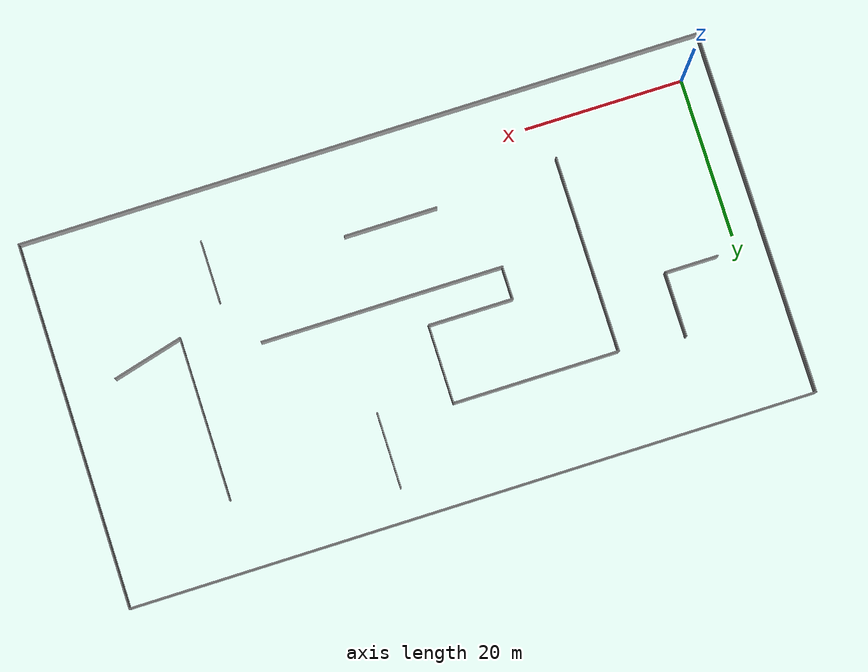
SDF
<?xml version='1.0'?>
<sdf version='1.7'>
  <model name='maze1.world'>
    <pose>39.64 18.255 0 0 -0 0</pose>
    <link name='Wall_0'>
      <collision name='Wall_0_Collision'>
        <geometry>
          <box>
            <size>45.75 0.15 2.5</size>
          </box>
        </geometry>
        <pose>0 0 1.25 0 -0 0</pose>
      </collision>
      <visual name='Wall_0_Visual'>
        <pose>0 0 1.25 0 -0 0</pose>
        <geometry>
          <box>
            <size>45.75 0.15 2.5</size>
          </box>
        </geometry>
        <material>
          <script>
            <uri>file://media/materials/scripts/gazebo.material</uri>
            <name>Gazebo/Grey</name>
          </script>
          <ambient>1 1 1 1</ambient>
        </material>
        <meta>
          <layer>0</layer>
        </meta>
      </visual>
      <pose>-43.05 0.125 0 0 -0 1.5708</pose>
    </link>
    <link name='Wall_1'>
      <collision name='Wall_1_Collision'>
        <geometry>
          <box>
            <size>86.25 0.15 2.5</size>
          </box>
        </geometry>
        <pose>0 0 1.25 0 -0 0</pose>
      </collision>
      <visual name='Wall_1_Visual'>
        <pose>0 0 1.25 0 -0 0</pose>
        <geometry>
          <box>
            <size>86.25 0.15 2.5</size>
          </box>
        </geometry>
        <material>
          <script>
            <uri>file://media/materials/scripts/gazebo.material</uri>
            <name>Gazebo/Grey</name>
          </script>
          <ambient>1 1 1 1</ambient>
        </material>
        <meta>
          <layer>0</layer>
        </meta>
      </visual>
      <pose>-3e-06 22.925 0 0 -0 0</pose>
    </link>
    <link name='Wall_10'>
      <collision name='Wall_10_Collision'>
        <geometry>
          <box>
            <size>30.5 0.15 2.5</size>
          </box>
        </geometry>
        <pose>0 0 1.25 0 -0 0</pose>
      </collision>
      <visual name='Wall_10_Visual'>
        <pose>0 0 1.25 0 -0 0</pose>
        <geometry>
          <box>
            <size>30.5 0.15 2.5</size>
          </box>
        </geometry>
        <material>
          <script>
            <uri>file://media/materials/scripts/gazebo.material</uri>
            <name>Gazebo/Grey</name>
          </script>
          <ambient>1 1 1 1</ambient>
        </material>
        <meta>
          <layer>0</layer>
        </meta>
      </visual>
      <pose>3.42051 -2.84481 0 0 -0 0</pose>
    </link>
    <link name='Wall_12'>
      <collision name='Wall_12_Collision'>
        <geometry>
          <box>
            <size>20.5 0.15 2.5</size>
          </box>
        </geometry>
        <pose>0 0 1.25 0 -0 0</pose>
      </collision>
      <visual name='Wall_12_Visual'>
        <pose>0 0 1.25 0 -0 0</pose>
        <geometry>
          <box>
            <size>20.5 0.15 2.5</size>
          </box>
        </geometry>
        <material>
          <script>
            <uri>file://media/materials/scripts/gazebo.material</uri>
            <name>Gazebo/Grey</name>
          </script>
          <ambient>1 1 1 1</ambient>
        </material>
        <meta>
          <layer>0</layer>
        </meta>
      </visual>
      <pose>27.8289 3.92957 0 0 -0 -1.5708</pose>
    </link>
    <link name='Wall_13'>
      <collision name='Wall_13_Collision'>
        <geometry>
          <box>
            <size>9.25 0.15 2.5</size>
          </box>
        </geometry>
        <pose>0 0 1.25 0 -0 0</pose>
      </collision>
      <visual name='Wall_13_Visual'>
        <pose>0 0 1.25 0 -0 0</pose>
        <geometry>
          <box>
            <size>9.25 0.15 2.5</size>
          </box>
        </geometry>
        <material>
          <script>
            <uri>file://media/materials/scripts/gazebo.material</uri>
            <name>Gazebo/Grey</name>
          </script>
          <ambient>1 1 1 1</ambient>
        </material>
        <meta>
          <layer>0</layer>
        </meta>
      </visual>
      <pose>32.2239 -5.0678 0 0 -0 0.261799</pose>
    </link>
    <link name='Wall_2'>
      <collision name='Wall_2_Collision'>
        <geometry>
          <box>
            <size>46 0.15 2.5</size>
          </box>
        </geometry>
        <pose>0 0 1.25 0 -0 0</pose>
      </collision>
      <visual name='Wall_2_Visual'>
        <pose>0 0 1.25 0 -0 0</pose>
        <geometry>
          <box>
            <size>46 0.15 2.5</size>
          </box>
        </geometry>
        <material>
          <script>
            <uri>file://media/materials/scripts/gazebo.material</uri>
            <name>Gazebo/Grey</name>
          </script>
          <ambient>1 1 1 1</ambient>
        </material>
        <meta>
          <layer>0</layer>
        </meta>
      </visual>
      <pose>43.05 0 0 0 -0 -1.5708</pose>
    </link>
    <link name='Wall_27'>
      <collision name='Wall_27_Collision'>
        <geometry>
          <box>
            <size>6.75 0.15 2.5</size>
          </box>
        </geometry>
        <pose>0 0 1.25 0 -0 0</pose>
      </collision>
      <visual name='Wall_27_Visual'>
        <pose>0 0 1.25 0 -0 0</pose>
        <geometry>
          <box>
            <size>6.75 0.15 2.5</size>
          </box>
        </geometry>
        <material>
          <script>
            <uri>file://media/materials/scripts/gazebo.material</uri>
            <name>Gazebo/Grey</name>
          </script>
          <ambient>1 1 1 1</ambient>
        </material>
        <meta>
          <layer>0</layer>
        </meta>
      </visual>
      <pose>-33.5889 3.71509 0 0 -0 0</pose>
    </link>
    <link name='Wall_28'>
      <collision name='Wall_28_Collision'>
        <geometry>
          <box>
            <size>8.25 0.15 2.5</size>
          </box>
        </geometry>
        <pose>0 0 1.25 0 -0 0</pose>
      </collision>
      <visual name='Wall_28_Visual'>
        <pose>0 0 1.25 0 -0 0</pose>
        <geometry>
          <box>
            <size>8.25 0.15 2.5</size>
          </box>
        </geometry>
        <material>
          <script>
            <uri>file://media/materials/scripts/gazebo.material</uri>
            <name>Gazebo/Grey</name>
          </script>
          <ambient>1 1 1 1</ambient>
        </material>
        <meta>
          <layer>0</layer>
        </meta>
      </visual>
      <pose>-30.2889 7.76509 0 0 -0 1.5708</pose>
    </link>
    <link name='Wall_3'>
      <collision name='Wall_3_Collision'>
        <geometry>
          <box>
            <size>86 0.15 2.5</size>
          </box>
        </geometry>
        <pose>0 0 1.25 0 -0 0</pose>
      </collision>
      <visual name='Wall_3_Visual'>
        <pose>0 0 1.25 0 -0 0</pose>
        <geometry>
          <box>
            <size>86 0.15 2.5</size>
          </box>
        </geometry>
        <material>
          <script>
            <uri>file://media/materials/scripts/gazebo.material</uri>
            <name>Gazebo/Grey</name>
          </script>
          <ambient>1 1 1 1</ambient>
        </material>
        <meta>
          <layer>0</layer>
        </meta>
      </visual>
      <pose>0.124997 -22.925 0 0 -0 3.14159</pose>
    </link>
    <link name='Wall_30'>
      <collision name='Wall_30_Collision'>
        <geometry>
          <box>
            <size>11.75 0.15 2.5</size>
          </box>
        </geometry>
        <pose>0 0 1.25 0 -0 0</pose>
      </collision>
      <visual name='Wall_30_Visual'>
        <pose>0 0 1.25 0 -0 0</pose>
        <geometry>
          <box>
            <size>11.75 0.15 2.5</size>
          </box>
        </geometry>
        <material>
          <script>
            <uri>file://media/materials/scripts/gazebo.material</uri>
            <name>Gazebo/Grey</name>
          </script>
          <ambient>1 1 1 1</ambient>
        </material>
        <meta>
          <layer>0</layer>
        </meta>
      </visual>
      <pose>-0.569781 -12.0856 0 0 -0 0</pose>
    </link>
    <link name='Wall_32'>
      <collision name='Wall_32_Collision'>
        <geometry>
          <box>
            <size>9.5 0.15 2.5</size>
          </box>
        </geometry>
        <pose>0 0 1.25 0 -0 0</pose>
      </collision>
      <visual name='Wall_32_Visual'>
        <pose>0 0 1.25 0 -0 0</pose>
        <geometry>
          <box>
            <size>9.5 0.15 2.5</size>
          </box>
        </geometry>
        <material>
          <script>
            <uri>file://media/materials/scripts/gazebo.material</uri>
            <name>Gazebo/Grey</name>
          </script>
          <ambient>1 1 1 1</ambient>
        </material>
        <meta>
          <layer>0</layer>
        </meta>
      </visual>
      <pose>7.91575 14.1914 0 0 -0 -1.5708</pose>
    </link>
    <link name='Wall_34'>
      <collision name='Wall_34_Collision'>
        <geometry>
          <box>
            <size>7.75 0.15 2.5</size>
          </box>
        </geometry>
        <pose>0 0 1.25 0 -0 0</pose>
      </collision>
      <visual name='Wall_34_Visual'>
        <pose>0 0 1.25 0 -0 0</pose>
        <geometry>
          <box>
            <size>7.75 0.15 2.5</size>
          </box>
        </geometry>
        <material>
          <script>
            <uri>file://media/materials/scripts/gazebo.material</uri>
            <name>Gazebo/Grey</name>
          </script>
          <ambient>1 1 1 1</ambient>
        </material>
        <meta>
          <layer>0</layer>
        </meta>
      </visual>
      <pose>21.9848 -12.8553 0 0 -0 -1.5708</pose>
    </link>
    <link name='Wall_5'>
      <collision name='Wall_5_Collision'>
        <geometry>
          <box>
            <size>24.75 0.15 2.5</size>
          </box>
        </geometry>
        <pose>0 0 1.25 0 -0 0</pose>
      </collision>
      <visual name='Wall_5_Visual'>
        <pose>0 0 1.25 0 -0 0</pose>
        <geometry>
          <box>
            <size>24.75 0.15 2.5</size>
          </box>
        </geometry>
        <material>
          <script>
            <uri>file://media/materials/scripts/gazebo.material</uri>
            <name>Gazebo/Grey</name>
          </script>
          <ambient>1 1 1 1</ambient>
        </material>
        <meta>
          <layer>0</layer>
        </meta>
      </visual>
      <pose>-22.0045 -1.1948 0 0 -0 1.5708</pose>
    </link>
    <link name='Wall_6'>
      <collision name='Wall_6_Collision'>
        <geometry>
          <box>
            <size>21 0.15 2.5</size>
          </box>
        </geometry>
        <pose>0 0 1.25 0 -0 0</pose>
      </collision>
      <visual name='Wall_6_Visual'>
        <pose>0 0 1.25 0 -0 0</pose>
        <geometry>
          <box>
            <size>21 0.15 2.5</size>
          </box>
        </geometry>
        <material>
          <script>
            <uri>file://media/materials/scripts/gazebo.material</uri>
            <name>Gazebo/Grey</name>
          </script>
          <ambient>1 1 1 1</ambient>
        </material>
        <meta>
          <layer>0</layer>
        </meta>
      </visual>
      <pose>-11.5795 11.1052 0 0 -0 0</pose>
    </link>
    <link name='Wall_7'>
      <collision name='Wall_7_Collision'>
        <geometry>
          <box>
            <size>10 0.15 2.5</size>
          </box>
        </geometry>
        <pose>0 0 1.25 0 -0 0</pose>
      </collision>
      <visual name='Wall_7_Visual'>
        <pose>0 0 1.25 0 -0 0</pose>
        <geometry>
          <box>
            <size>10 0.15 2.5</size>
          </box>
        </geometry>
        <material>
          <script>
            <uri>file://media/materials/scripts/gazebo.material</uri>
            <name>Gazebo/Grey</name>
          </script>
          <ambient>1 1 1 1</ambient>
        </material>
        <meta>
          <layer>0</layer>
        </meta>
      </visual>
      <pose>-1.15449 6.1802 0 0 -0 -1.5708</pose>
    </link>
    <link name='Wall_8'>
      <collision name='Wall_8_Collision'>
        <geometry>
          <box>
            <size>10.75 0.15 2.5</size>
          </box>
        </geometry>
        <pose>0 0 1.25 0 -0 0</pose>
      </collision>
      <visual name='Wall_8_Visual'>
        <pose>0 0 1.25 0 -0 0</pose>
        <geometry>
          <box>
            <size>10.75 0.15 2.5</size>
          </box>
        </geometry>
        <material>
          <script>
            <uri>file://media/materials/scripts/gazebo.material</uri>
            <name>Gazebo/Grey</name>
          </script>
          <ambient>1 1 1 1</ambient>
        </material>
        <meta>
          <layer>0</layer>
        </meta>
      </visual>
      <pose>-6.45449 1.25519 0 0 -0 3.14159</pose>
    </link>
    <link name='Wall_9'>
      <collision name='Wall_9_Collision'>
        <geometry>
          <box>
            <size>4.25 0.15 2.5</size>
          </box>
        </geometry>
        <pose>0 0 1.25 0 -0 0</pose>
      </collision>
      <visual name='Wall_9_Visual'>
        <pose>0 0 1.25 0 -0 0</pose>
        <geometry>
          <box>
            <size>4.25 0.15 2.5</size>
          </box>
        </geometry>
        <material>
          <script>
            <uri>file://media/materials/scripts/gazebo.material</uri>
            <name>Gazebo/Grey</name>
          </script>
          <ambient>1 1 1 1</ambient>
        </material>
        <meta>
          <layer>0</layer>
        </meta>
      </visual>
      <pose>-11.7545 -0.794806 0 0 -0 -1.5708</pose>
    </link>
    <static>1</static>
  </model>
</sdf>
